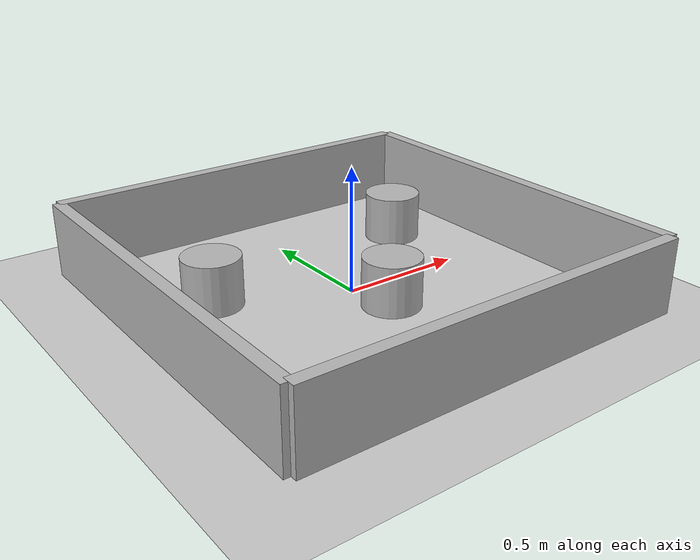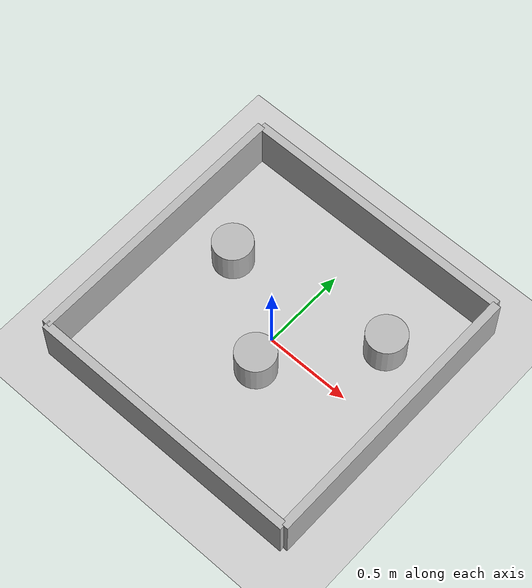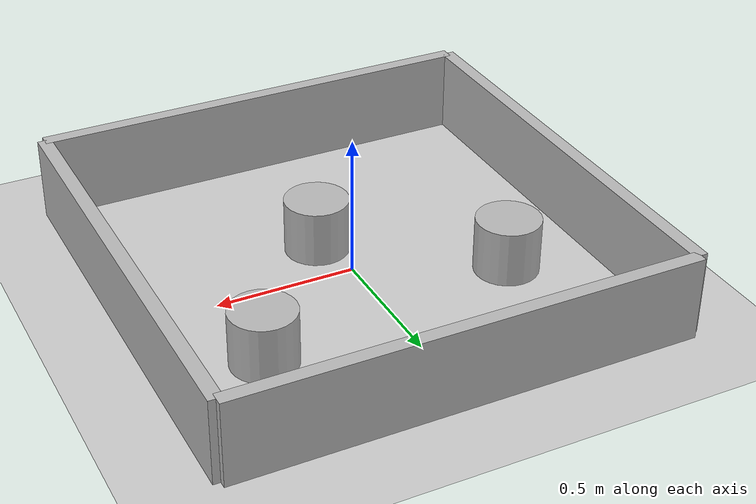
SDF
<?xml version="1.0"?>
<sdf version="1.6">
  <world name="imdl_arena_task2_b">
    <scene><shadows>false</shadows></scene>
    <include><uri>model://ground_plane</uri></include>
    <include><uri>model://sun</uri></include>
    <physics name="default_physics" type="ode"><max_step_size>0.001</max_step_size><real_time_update_rate>1000</real_time_update_rate></physics>
    <model name="arena_walls"><static>true</static><link name="walls">
      <collision name="north_wall_collision"><pose>0 0.815 0.15 0 0 0</pose><geometry><box><size>1.63 0.05 0.30</size></box></geometry></collision><visual name="north_wall_visual"><pose>0 0.815 0.15 0 0 0</pose><geometry><box><size>1.63 0.05 0.30</size></box></geometry></visual>
      <collision name="south_wall_collision"><pose>0 -0.815 0.15 0 0 0</pose><geometry><box><size>1.63 0.05 0.30</size></box></geometry></collision><visual name="south_wall_visual"><pose>0 -0.815 0.15 0 0 0</pose><geometry><box><size>1.63 0.05 0.30</size></box></geometry></visual>
      <collision name="east_wall_collision"><pose>0.815 0 0.15 0 0 0</pose><geometry><box><size>0.05 1.63 0.30</size></box></geometry></collision><visual name="east_wall_visual"><pose>0.815 0 0.15 0 0 0</pose><geometry><box><size>0.05 1.63 0.30</size></box></geometry></visual>
      <collision name="west_wall_collision"><pose>-0.815 0 0.15 0 0 0</pose><geometry><box><size>0.05 1.63 0.30</size></box></geometry></collision><visual name="west_wall_visual"><pose>-0.815 0 0.15 0 0 0</pose><geometry><box><size>0.05 1.63 0.30</size></box></geometry></visual>
    </link></model>
    <model name="obstacle_cylinder_1"><static>true</static><pose>-0.48 0.22 0.10 0 0 0</pose><link name="link"><visual name="visual"><geometry><cylinder><radius>0.115</radius><length>0.20</length></cylinder></geometry></visual><collision name="collision"><geometry><cylinder><radius>0.115</radius><length>0.20</length></cylinder></geometry></collision></link></model>
    <model name="obstacle_cylinder_2"><static>true</static><pose>0.05 -0.18 0.10 0 0 0</pose><link name="link"><visual name="visual"><geometry><cylinder><radius>0.115</radius><length>0.20</length></cylinder></geometry></visual><collision name="collision"><geometry><cylinder><radius>0.115</radius><length>0.20</length></cylinder></geometry></collision></link></model>
    <model name="obstacle_cylinder_3"><static>true</static><pose>0.48 0.35 0.10 0 0 0</pose><link name="link"><visual name="visual"><geometry><cylinder><radius>0.115</radius><length>0.20</length></cylinder></geometry></visual><collision name="collision"><geometry><cylinder><radius>0.115</radius><length>0.20</length></cylinder></geometry></collision></link></model>
  </world>
</sdf>
